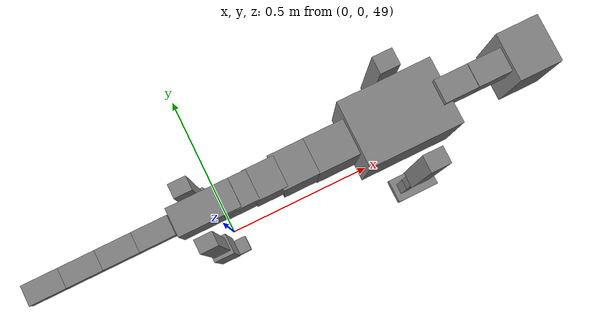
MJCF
<mujoco model="dog">

    <default>
        <joint armature="0.02" stiffness="1" damping="0.2" limited="true"/>
        <geom condim="3" friction="1 0.05 0.05" margin="0.01"/>
        <motor ctrllimited="true" ctrlrange="-1.0 1.0" forcelimited="true" gear="50"/>
    </default>

    <compiler inertiafromgeom="true" angle="radian"/>

    <option timestep="0.016" iterations="50" tolerance="1e-10" solver="Newton" jacobian="dense" cone="pyramidal"/>

    <size nconmax="20000" njmax="60000" nstack="5000000"/>
    <visual>
        <map force="0.1" zfar="30"/>
        <rgba haze="0.15 0.25 0.35 1"/>
        <quality shadowsize="2048"/>
        <global offwidth="800" offheight="800"/>
    </visual>

    <asset>
        <texture type="skybox" builtin="gradient" rgb1="0.3 0.5 0.7" rgb2="0 0 0" width="512" height="512"/>
        <texture name="texplane" type="2d" builtin="checker" rgb1=".2 .3 .4" rgb2=".1 0.15 0.2" width="512" height="512"
                 mark="cross" markrgb=".8 .8 .8"/>
        <texture name="texgeom" type="cube" builtin="flat" mark="cross" width="127" height="1278" rgb1="0.8 0.6 0.4"
                 rgb2="0.8 0.6 0.4" markrgb="1 1 1" random="0.01"/>

        <material name="matplane" reflectance="0.3" texture="texplane" texrepeat="1 1" texuniform="true"/>
        <material name="matgeom" texture="texgeom" texuniform="true" rgba="0.8 0.6 .4 1"/>
    </asset>

    <worldbody>
        <geom name="floor" pos="0 0 0" size="0 0 .25" type="plane" material="matplane" condim="3"/>

        <light directional="false" diffuse=".2 .2 .2" specular="0 0 0" pos="0 0 5" dir="0 0 -1" castshadow="false"/>
        <light mode="targetbodycom" target="torso" directional="false" diffuse=".8 .8 .8" specular="0.3 0.3 0.3"
               pos="0 0 4.0" dir="0 0 -1"/>

        <body name="root" pos="0 0 50">
            <freejoint name="root_1"/>
            <geom type="box" pos="0 0 -0.02" size="0.0774  0.0358  0.063" density="2030"/>

            <body name="spine1" pos="0.054 0 0">
                <joint name="spine1_y" axis="0 1 0" range="0 0.7" limited="true"/>
                <geom type="box" pos="0.02375 0 -0.03" size="0.04375  0.0375  0.05985" density="2030"/>

                <body name="spine2" pos="0.0612 0 0">
                    <joint name="spine2_y" axis="0 1 0" range="-0.15 0.15" limited="true"/>
                    <geom type="box" pos="0.03555  0  -0.04" size="0.04055  0.039  0.06615" density="2030"/>

                    <body name="spine3" pos="0.0730 0 0">
                        <joint name="spine3_y" axis="0 1 0" range="-0.15 0.15" limited="true"/>
                        <geom type="box" pos="0.03555  0  -0.057" size="0.04555  0.0445  0.081" density="2030"/>

                        <body name="spine4" pos="0.0780 0 0">
                            <joint name="spine4_y" axis="0 1 0" range="-0.15 0.15" limited="true"/>
                            <geom type="box" pos="0.05265  0  -0.07" size="0.05265  0.045  0.09135" density="2030"/>

                            <body name="torso" pos="0.1082 0 0">
                                <joint name="torso_y" axis="0 1 0" range="-0.15 0.15" limited="true"/>
                                <geom type="box" pos="0.11925  0  -0.085" size="0.11925  0.085  0.11745"
                                      density="2030"/>

                                <body name="neck1" pos="0.2160  0   0.0180">
                                    <joint name="neck1_y" axis="0 1 0" range="-1.2  -1" limited="true"/>
                                    <geom type="box" pos="0.0423  0  0" size="0.0423  0.03  0.036" density="2325"/>

                                    <body name="neck2" pos="0.0853  0  0">
                                        <joint name="neck2_y" axis="0 1 0" range="0.1  0" limited="true"/>
                                        <geom type="box" pos="0.0423  0  0" size="0.0423  0.03  0.036" density="2325"/>

                                        <body name="head" pos="0.0853  0  0">
                                            <joint name="head_y" axis="0 1 0" range="-0.3  -0.2" limited="true"/>
                                            <geom type="box" pos="0.0531  0  -0.055" size="0.0531  0.06  0.1044"
                                                  density="4030"/>

                                        </body>
                                    </body>
                                </body>

                                <body name="front_shoulder" pos="0.156  0   -0.0480">
                                    <joint name="front_shoulder_y" axis="0 1 0" range="-1 1.5" limited="true"/>
                                    <geom type="box" pos="0 0.13 -0.1401" size="0.0267  0.0228  0.1667" density="1158"/>
                                    <geom type="box" pos="0 -0.13 -0.1401" size="0.0267  0.0228  0.1667"
                                          density="1158"/>

                                    <body name="front_elbow" pos="0  0  -0.2801">
                                        <joint name="front_elbow_y" axis="0 1 0" range="-2 0" limited="true"/>
                                        <geom type="box" pos="0 0.13 -0.0902" size="0.0148  0.0151  0.0902"
                                              density="1081"/>
                                        <geom type="box" pos="0 -0.13 -0.0902" size="0.0148  0.0151  0.0902"
                                              density="1081"/>

                                        <body name="front_wrist" pos="0  0  -0.1804">
                                            <joint name="front_wrist_y" axis="0 1 0" range="-0.2 0" limited="true"/>
                                            <geom type="box" pos="0 0.13 -0.0759" size="0.0138  0.0154  0.0890"
                                                  density="1664"/>
                                            <geom type="box" pos="0 -0.13 -0.0759" size="0.0138  0.0154  0.0890"
                                                  density="1664"/>

                                            <body name="front_finger_end" pos="0  0  -0.1518">
                                                <joint name="front_finger_y" axis="0 1 0" range="-0.4 1"
                                                       limited="true"/>
                                                <geom type="box" pos="0.0357  0.13  -0.0017"
                                                      size="0.0655  0.0357  0.0167" density="1515"/>
                                                <geom type="box" pos="0.0357  -0.13  -0.0017"
                                                      size="0.0655  0.0357  0.0167" density="1515"/>

                                            </body>

                                        </body>
                                    </body>
                                </body>

                            </body>
                        </body>
                    </body>
                </body>
            </body>

            <body name="back_hip" pos="-0.03 0 -0.018">
                <joint name="back_hip_y" axis="0 1 0" range="-1.5 0.3" limited="true"/>
                <geom type="box" pos="0 0.07 -0.1820" size="0.0232  0.0182  0.2048" density="1154"/>
                <geom type="box" pos="0 -0.07 -0.1820" size="0.0232  0.0182  0.2048" density="1154"/>

                <body name="back_knee" pos="0  0  -0.3640">
                    <joint name="back_knee_y" axis="0 1 0" range="0 2.8" limited="true"/>
                    <geom type="box" pos="0 0.07 -0.1315" size="0.0291  0.0287  0.1471" density="1227"/>
                    <geom type="box" pos="0 -0.07 -0.1315" size="0.0291  0.0287  0.1471" density="1227"/>

                    <body name="back_ankle" pos="0  0  -0.2631">
                        <joint name="back_ankle_y" axis="0 1 0" range="-2.2 0" limited="true"/>
                        <geom type="box" pos="0 0.07 -0.0387" size="0.0237  0.0237  0.0499" density="1284"/>
                        <geom type="box" pos="0 -0.07 -0.0387" size="0.0237  0.0237  0.0499" density="1284"/>

                        <body name="back_toe_end" pos="0  0  -0.0774">
                            <joint name="back_toe_y" axis="0 1 0" range="-0.4 1" limited="true"/>
                            <geom type="box" pos="0.0228  0.07  -0.0098" size="0.0418  0.0228  0.0248" density="1515"/>
                            <geom type="box" pos="0.0228  -0.07  -0.0098" size="0.0418  0.0228  0.0248" density="1515"/>

                        </body>
                    </body>
                </body>
            </body>

            <body name="tail1" pos="-0.074 0 -0.006">
                <joint name="tail1_y" axis="0 1 0" range="-0.2 0.2" limited="true"/>
                <geom type="box" pos="-0.0536  0  0" size="0.045  0.025  0.0175" density="1587"/>

                <body name="tail2" pos="-0.09 0 0">
                    <joint name="tail2_y" axis="0 1 0" range="-0.2 0.2" limited="true"/>
                    <geom type="box" pos="-0.0536  0  0" size="0.045  0.025  0.0175" density="1587"/>

                    <body name="tail3" pos="-0.09 0 0">
                        <joint name="tail3_y" axis="0 1 0" range="-0.2 0.2" limited="true"/>
                        <geom type="box" pos="-0.0536  0  0" size="0.045  0.025  0.0175" density="1587"/>

                        <body name="tail4" pos="-0.09 0 0">
                            <joint name="tail4_y" axis="0 1 0" range="-0.2 0.2" limited="true"/>
                            <geom type="box" pos="-0.0536  0  0" size="0.045  0.025  0.0175" density="1587"/>

                        </body>
                    </body>
                </body>
            </body>
        </body>
    </worldbody>

    <actuator>
        <motor joint="spine1_y" forcerange="-150 150     "/>
        <motor joint="spine2_y" forcerange="-150 150     "/>
        <motor joint="spine3_y" forcerange="-150 150     "/>
        <motor joint="spine4_y" forcerange="-150 150     "/>
        <motor joint="torso_y" forcerange="-150 150     "/>
        <motor joint="neck1_y" forcerange="-100 100       "/>
        <motor joint="neck2_y" forcerange="-100 100       "/>
        <motor joint="head_y" forcerange="-150 150       "/>
        <motor joint="front_shoulder_y" forcerange="-143.78 108.20"/>
        <motor joint="front_elbow_y" forcerange="-107.01 102.74"/>
        <motor joint="front_wrist_y" forcerange="-50.12 72.95"/>
        <motor joint="front_finger_y" forcerange="-60.99 89.58"/>
        <motor joint="back_hip_y" forcerange="-206.09 236.06"/>
        <motor joint="back_knee_y" forcerange="-274.86 342.17"/>
        <motor joint="back_angle_y" forcerange="-226.80 51.95"/>
        <motor joint="back_toe_y" forcerange="-70.98 31.36"/>
        <motor joint="tail1_y" forcerange="-50 50     "/>
        <motor joint="tail2_y" forcerange="-50 50     "/>
        <motor joint="tail3_y" forcerange="-50 50     "/>
        <motor joint="tail4_y" forcerange="-50 50     "/>
    </actuator>
</mujoco>
